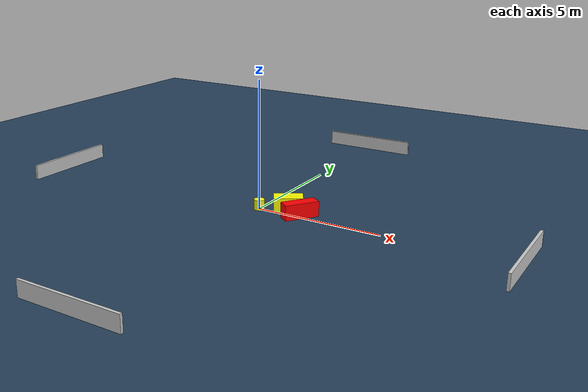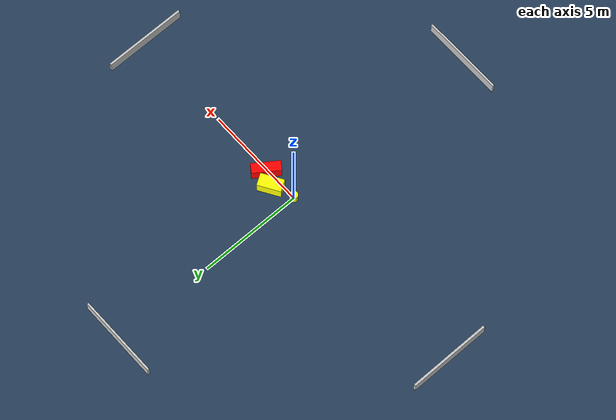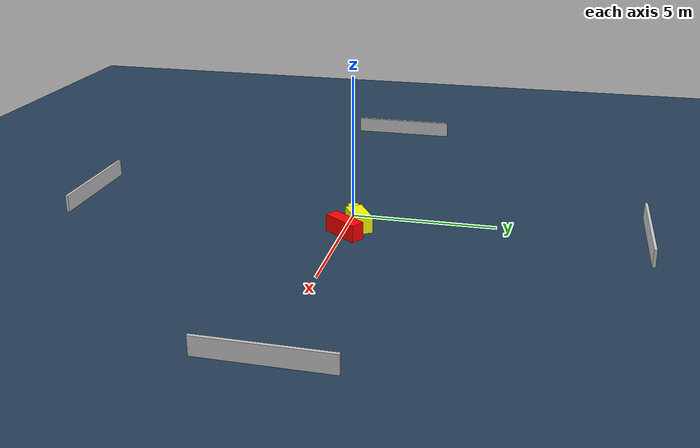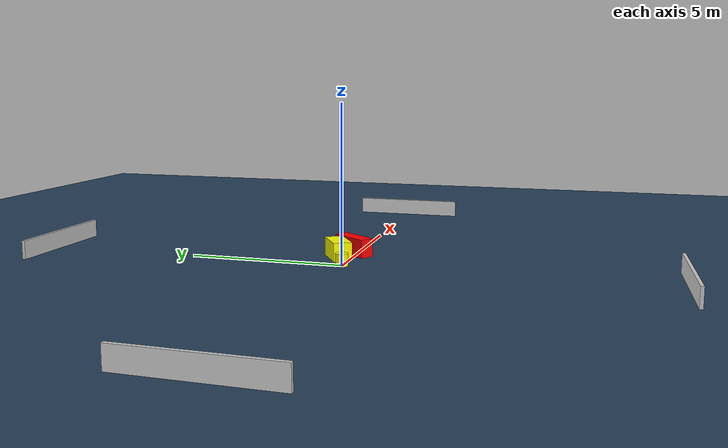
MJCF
<?xml version="1.0" ?>
<mujoco model="generated_environment">
  <option timestep="0.01" integrator="RK4" cone="elliptic"/>
  <default>
    <geom density="1"/>
  </default>
  <asset>
    <texture builtin="gradient" height="3072" name="skybox" rgb1="0.3 0.5 0.7" rgb2="0 0 0" type="skybox" width="512"/>
    <texture builtin="checker" height="300" name="groundplane" rgb1="0.2 0.3 0.4" rgb2="0.1 0.2 0.3" type="2d" width="300"/>
    <material name="groundplane" reflectance="0.2" texrepeat="5 5" texture="groundplane"/>
  </asset>
  <worldbody>
    <light dir="0 0 -1" directional="true" pos="0 0 1.5"/>
    <geom condim="3" friction="0.5 0.005 0.001" material="groundplane" name="floor" pos="0 0 0" size="0 0 0.05" type="plane"/>
    <body name="walls">
      <geom name="wall_1" condim="4" pos="-10.0 0.0 0.3" rgba="0.800000011920929 0.800000011920929 0.800000011920929 1.0" size="0.05 2.0 0.3" type="box"/>
      <geom name="wall_2" condim="4" pos="10.0 0.0 0.3" rgba="0.800000011920929 0.800000011920929 0.800000011920929 1.0" size="0.05 2.0 0.3" type="box"/>
      <geom name="wall_3" condim="4" pos="0.0 -10.0 0.3" rgba="0.800000011920929 0.800000011920929 0.800000011920929 1.0" size="2.0 0.05 0.3" type="box"/>
      <geom name="wall_4" condim="4" pos="0.0 10.0 0.3" rgba="0.800000011920929 0.800000011920929 0.800000011920929 1.0" size="2.0 0.05 0.3" type="box"/>
    </body>
    <body name="robot">
      <joint name="joint_x" type="slide" pos="0 0 0" axis="1 0 0"/>
      <joint name="joint_y" type="slide" pos="0 0 0" axis="0 1 0"/>
      <geom name="robot" type="cylinder" pos="0.0 0.0 0.2" size="0.2 0.2 0.0" mass="5.0" friction="1.0 0.005 0.0001" condim="4" rgba="1.0 1.0 0.0 1.0"/>
    </body>
    <body name="obstacle_1_movable">
      <geom name="obstacle_1_movable" condim="4" pos="1.0400497897289471 0.42006025368138616 0.3" euler="0 0 121.64666046718276" friction="0.0 0.005 0.001" rgba="1.0 1.0 0.0 1.0" size="0.3020084425720339 0.55911115601917 0.3" type="box" mass="0.1"/>
      <joint type="free"/>
    </body>
    <body name="obstacle_2_static">
      <geom name="obstacle_2_static" condim="4" pos="1.723731400751398 0.08834193422942134 0.3" euler="0 0 54.51530588385523" friction="0.0 0.005 0.001" rgba="1.0 0.0 0.0 1.0" size="0.6756260030906929 0.23824451393214147 0.3" type="box"/>
    </body>
  </worldbody>
  <actuator>
    <motor name="actuator_x" joint="joint_x" gear="1" ctrlrange="-1 1"/>
    <motor name="actuator_y" joint="joint_y" gear="1" ctrlrange="-1 1"/>
  </actuator>
</mujoco>
